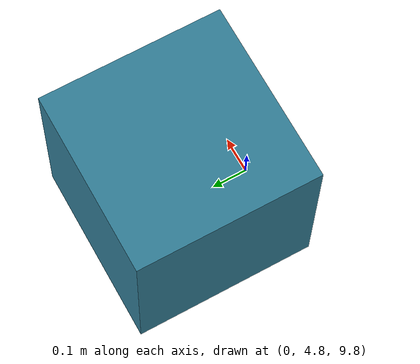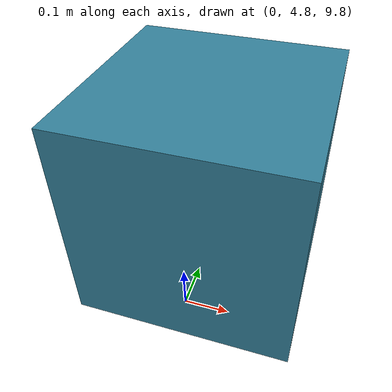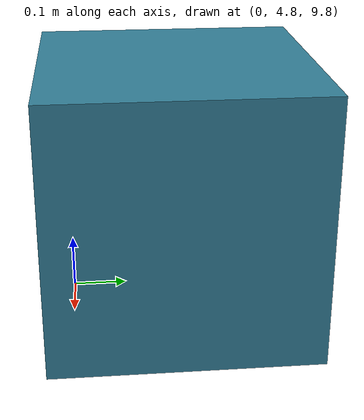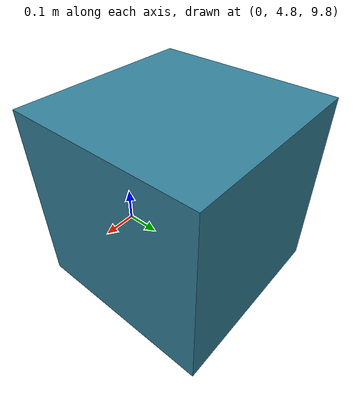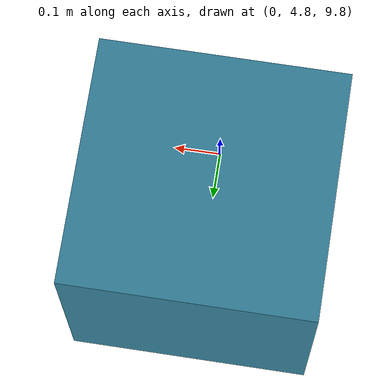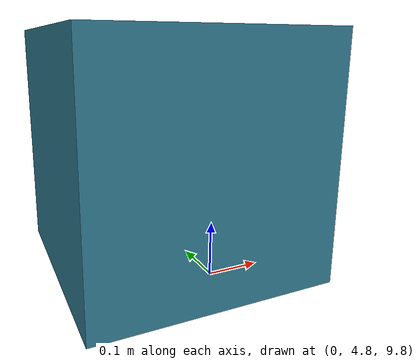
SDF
<?xml version="1.0" ?>
<sdf version="1.6">
  <world name="minimal_world">
    <gravity>0 0 -9.81</gravity>
    <scene>
      <ambient>0.35 0.35 0.4 1</ambient>
      <sky><time>12</time></sky>
    </scene>

    <light name="sun" type="directional">
      <cast_shadows>true</cast_shadows>
      <pose>0 10 0 0 0 0</pose>
      <diffuse>1 1 1 1</diffuse>
      <specular>0.7 0.7 0.7 1</specular>
      <attenuation>
        <range>1000</range>
      </attenuation>
      <direction>-0.7 -0.7 -1</direction>
    </light>

    <include>
      <uri>model://ground_plane</uri>
    </include>

    <include>
      <uri>model://models/simple_box</uri>
      <pose>0 5 10 0 0 0</pose>
      <name>crate_0</name>
    </include>
  </world>
</sdf>

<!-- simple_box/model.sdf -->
<sdf version="1.6">
  <model name="simple_box">
    <pose>0 0 0.5 0 0 0</pose>
    <link name="body">
      <inertial>
        <mass>2.0</mass>
        <inertia>
          <ixx>0.02</ixx><iyy>0.02</iyy><izz>0.02</izz>
        </inertia>
      </inertial>
      <collision name="collision">
        <geometry><box><size>0.5 0.5 0.5</size></box></geometry>
      </collision>
      <visual name="visual">
        <geometry><box><size>0.5 0.5 0.5</size></box></geometry>
        <material><ambient>0.2 0.5 0.6 1</ambient></material>
      </visual>
    </link>
    <static>false</static>
  </model>
</sdf>
